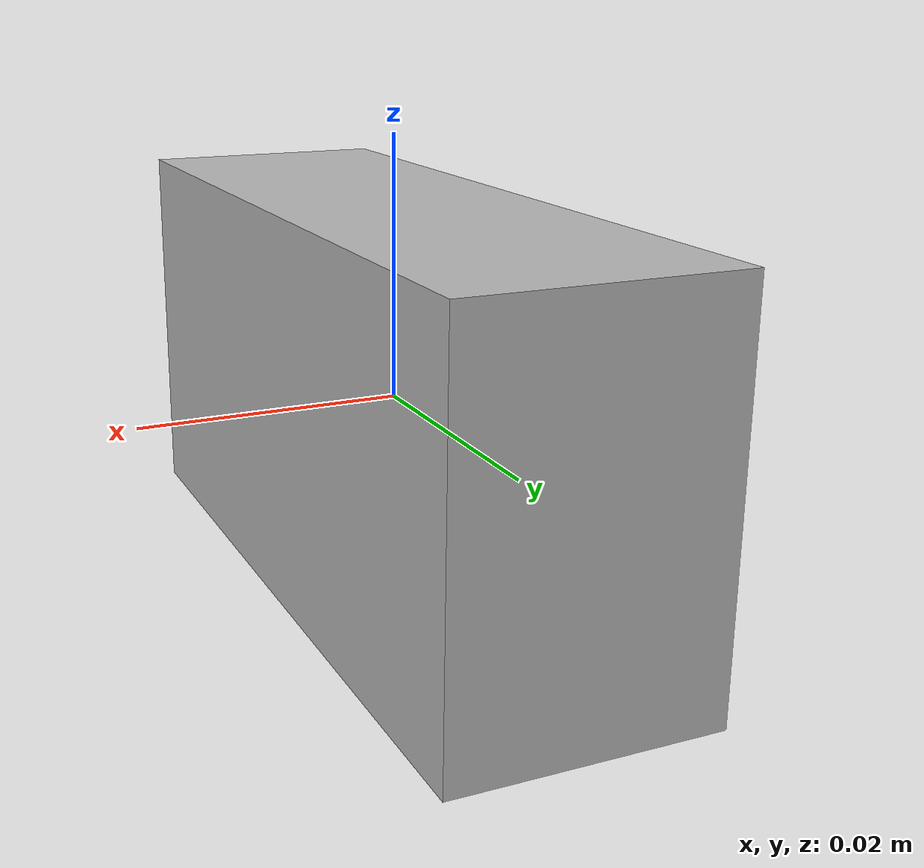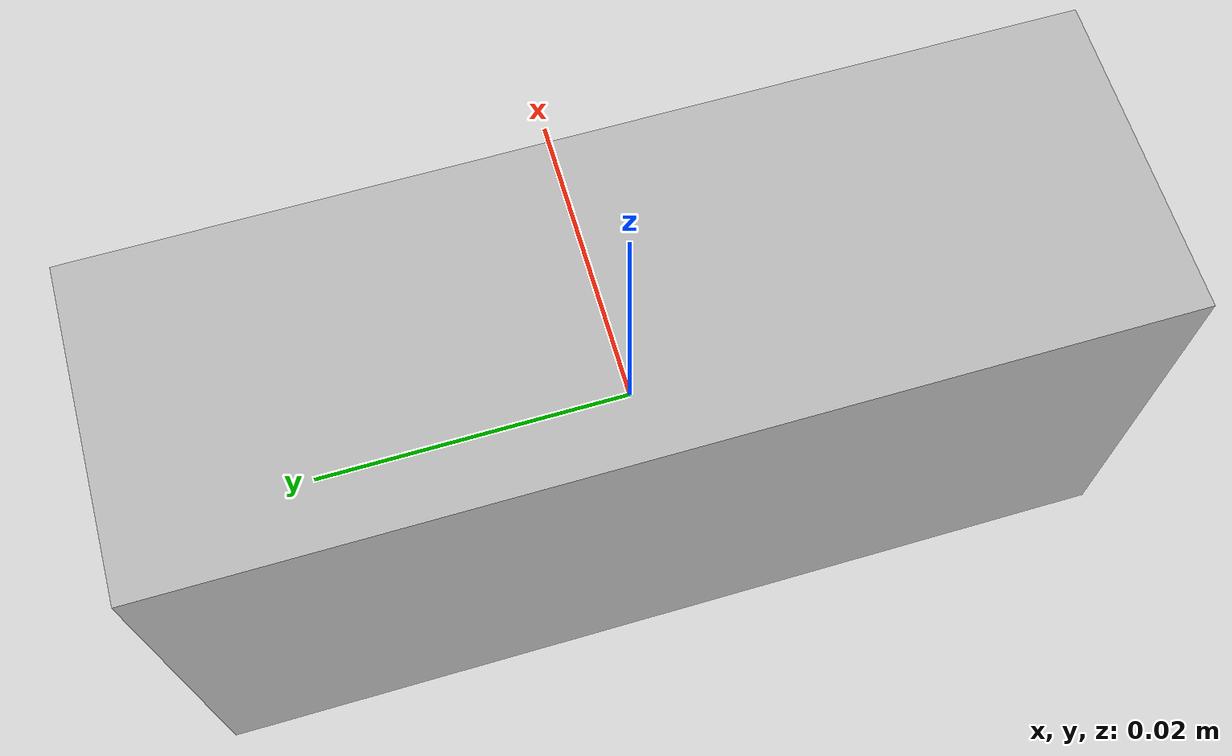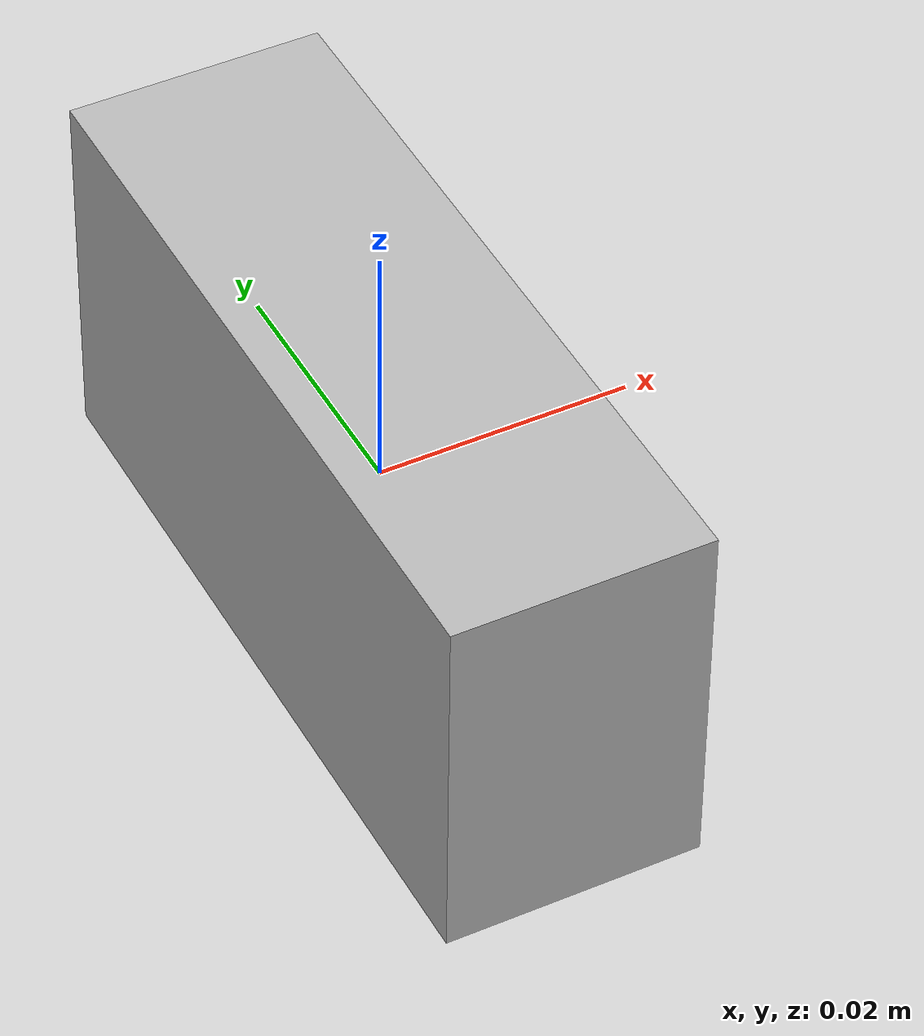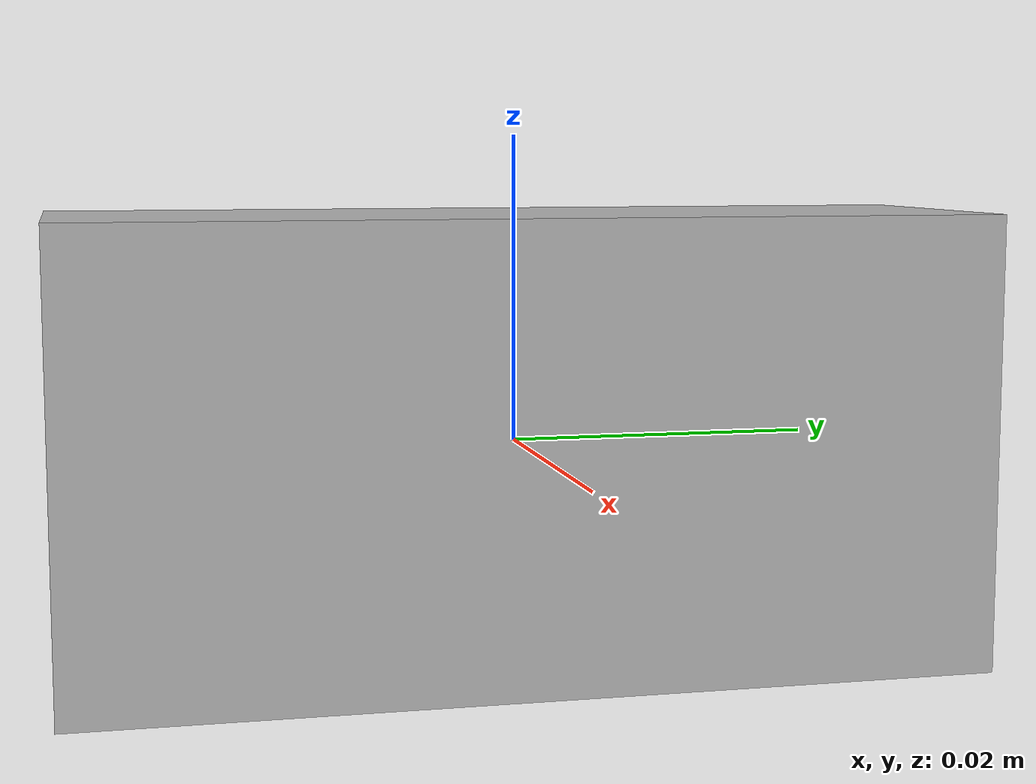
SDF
<?xml version="1.0" encoding="UTF-8"?>
<sdf version='1.9'>
  <model name='depth_cam_up'>
    <self_collide>false</self_collide>
    <static>false</static>
    <link name="depth_up_link">
      <inertial>
        <mass>0.050</mass>
        <inertia>
          <ixx>0.00004</ixx><ixy>0</ixy><ixz>0</ixz>
          <iyy>0.00004</iyy><iyz>0</iyz><izz>0.00004</izz>
        </inertia>
      </inertial>
      <visual name="depth_cam_up/visual/housing">
        <geometry><box><size>0.02 0.06 0.03</size></box></geometry>
      </visual>
      <sensor name="depth_up" type="depth_camera">
        <gz_frame_id>depth_up_link</gz_frame_id>
        <pose>0 0 0 0 0 0</pose>
        <camera>
          <horizontal_fov>1.7453293</horizontal_fov>
          <image>
            <width>640</width>
            <height>480</height>
            <format>R_FLOAT32</format>
          </image>
          <clip>
            <near>0.2</near>
            <far>35.0</far>
          </clip>
        </camera>
        <always_on>1</always_on>
        <update_rate>30</update_rate>
        <visualize>false</visualize>
        <topic>/uav/depth_up/image</topic>
      </sensor>
      <gravity>true</gravity>
      <velocity_decay />
    </link>
  </model>
</sdf>
